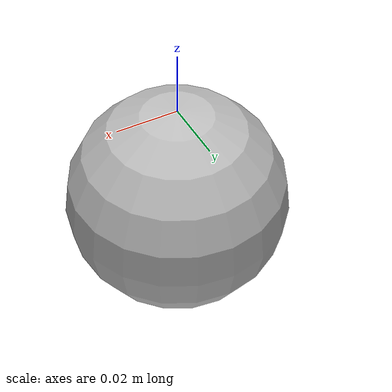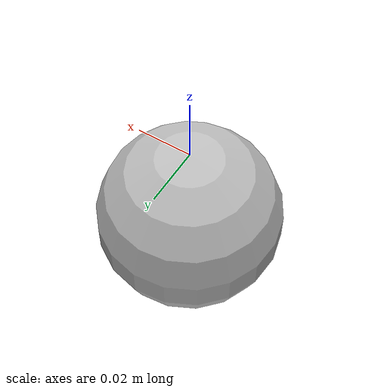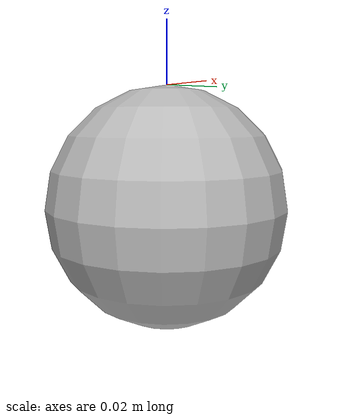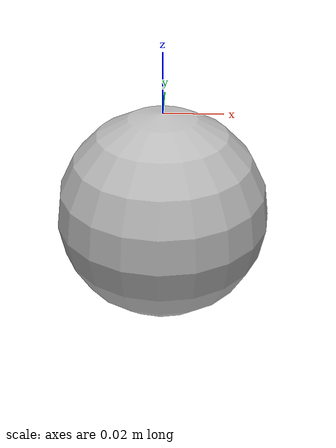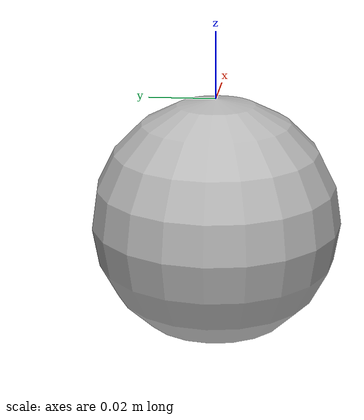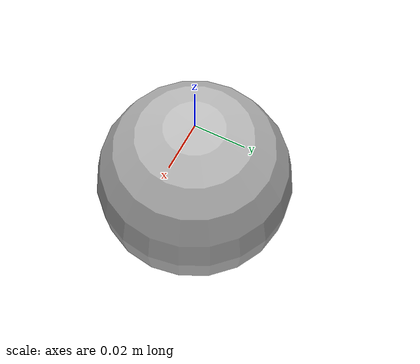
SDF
<?xml version='1.0'?>
<sdf version="1.4">
  <model name="tomato">
    <static>false</static>
    <link name="link">
      <inertial>
        <mass>0.01</mass>
        <inertia>
          <ixx>0.0001</ixx>
          <ixy>0.0</ixy>
          <ixz>0.0</ixz>
          <iyy>0.0001</iyy>
          <iyz>0.0</iyz>
          <izz>0.0001</izz>
        </inertia>
      </inertial>
      <pose>0 0 -0.038 0 0 0</pose>
      <collision name="collision">
        <geometry>
          <!-- We use a cylinder to stop it from rolling -->
          <cylinder>
            <length>0.076</length> <!-- 2*radius of sphere-->
            <radius>0.01</radius>
          </cylinder>
        </geometry>
      </collision>
      <visual name="visual">
        <geometry>
          <sphere>
            <radius>0.038</radius>
          </sphere>
        </geometry>
        <material>
          <script>
            <uri>file://media/materials/scripts/custom.material</uri>
            <name>Custom/Tomato</name>
          </script>
        </material>
      </visual>
    </link>
  </model>
</sdf>
